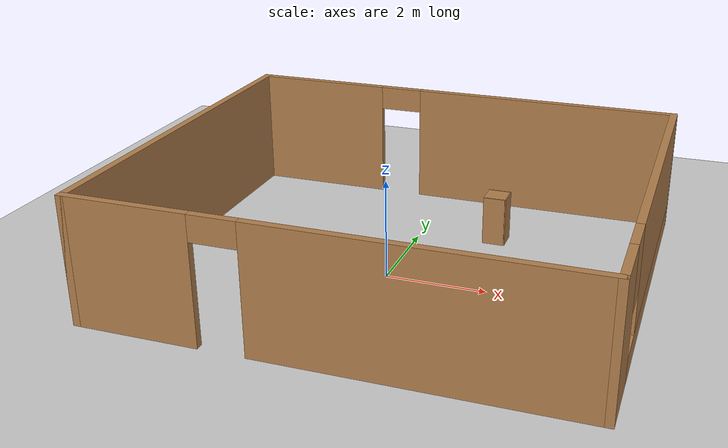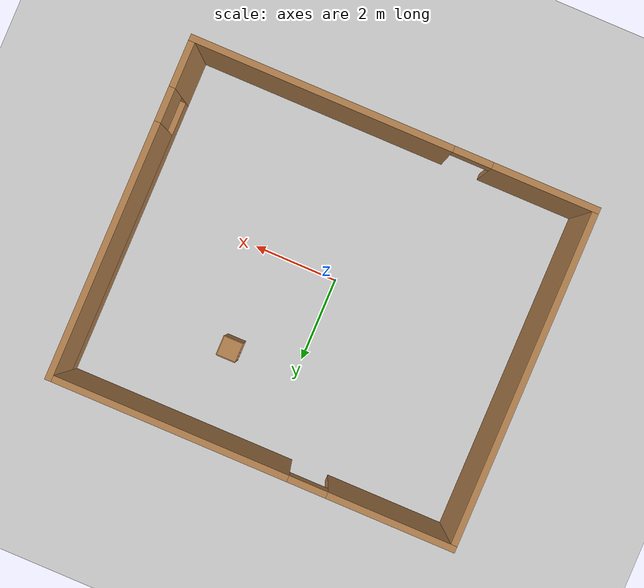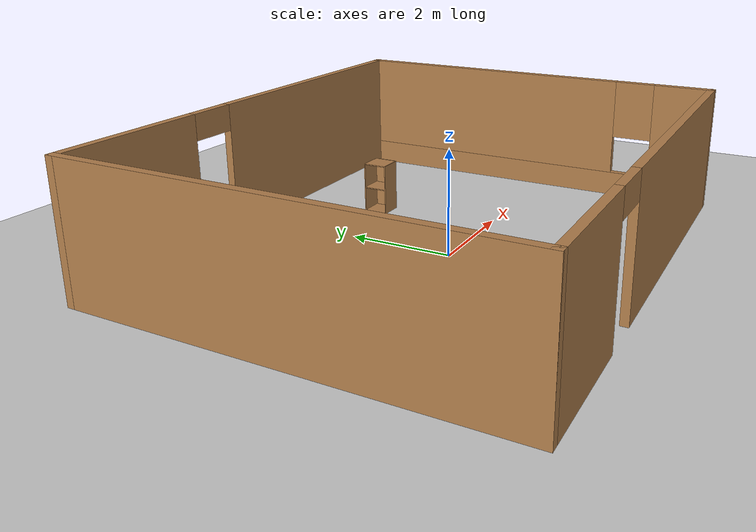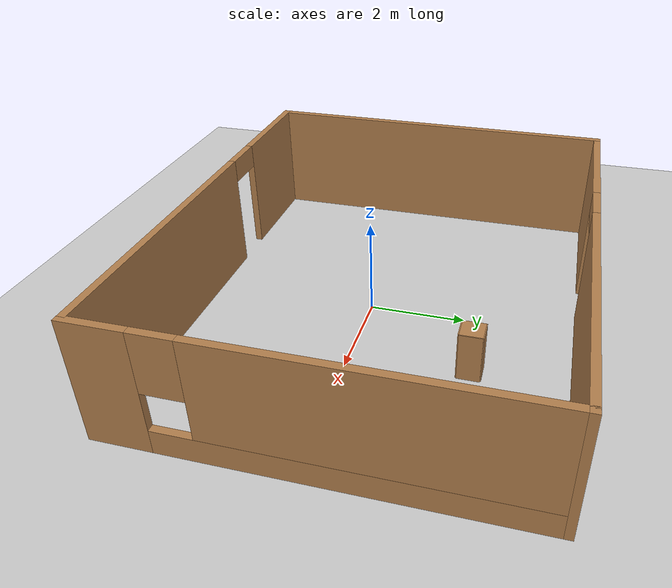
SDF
<sdf version="1.7">
 <world name="default">
  <light name="sun" type="directional">
   <pose>0 0 10 0 -0 0</pose>
   <diffuse>0.8 0.8 0.8 1</diffuse>
   <specular>0.2 0.2 0.2 1</specular>
   <attenuation>
    <range>1000</range>
    <constant>0.9</constant>
    <linear>0.01</linear>
    <quadratic>0.001</quadratic>
   </attenuation>
   <direction>-0.5 0.1 -0.9</direction>
   <spot><inner_angle>0</inner_angle><outer_angle>0</outer_angle><falloff>0</falloff></spot>
  </light>
  <model name="ground_plane">
   <static>1</static>
   <link name="link">
    <collision name="collision">
     <geometry><plane><normal>0 0 1</normal><size>100 100</size></plane></geometry>
     <surface>
      <contact><collide_bitmask>65535</collide_bitmask></contact>
      <friction><ode><mu>100</mu><mu2>50</mu2></ode></friction>
     </surface>
    </collision>
    <visual name="visual">
     <cast_shadows>0</cast_shadows>
     <geometry><plane><normal>0 0 1</normal><size>100 100</size></plane></geometry>
     <material>
      <script><uri>file://media/materials/scripts/gazebo.material</uri><name>Gazebo/Grey</name></script>
     </material>
    </visual>
   </link>
  </model>
  <gravity>0 0 -9.8</gravity>
  <magnetic_field>6e-06 2.3e-05 -4.2e-05</magnetic_field>
  <atmosphere type="adiabatic"/>
  <physics type="ode">
   <max_step_size>0.001</max_step_size>
   <real_time_factor>1</real_time_factor>
   <real_time_update_rate>1000</real_time_update_rate>
  </physics>
  <scene><ambient>0.4 0.4 0.4 1</ambient><background>0.7 0.7 0.7 1</background><shadows>1</shadows></scene>
  <audio><device>default</device></audio>
  <spherical_coordinates>
   <surface_model>EARTH_WGS84</surface_model>
   <latitude_deg>0</latitude_deg>
   <longitude_deg>0</longitude_deg>
   <elevation>0</elevation>
   <heading_deg>0</heading_deg>
  </spherical_coordinates>
  <model name="cabinet">
   <static>1</static>
   <link name="cabinet_bottom_plate">
    <inertial>
     <pose>0 0 -1 0 -0 0</pose>
     <inertia><ixx>2.05</ixx><ixy>0</ixy><ixz>0</ixz><iyy>2.05</iyy><iyz>0</iyz><izz>2.05</izz></inertia>
     <mass>25</mass>
    </inertial>
    <collision name="cabinet_bottom_plate_geom">
     <pose>0 0 0.01 0 -0 0</pose>
     <geometry><box><size>0.45 0.45 0.02</size></box></geometry>
    </collision>
    <visual name="cabinet_bottom_plate_geom_visual">
     <pose>0 0 0.01 0 -0 0</pose>
     <geometry><box><size>0.45 0.45 0.02</size></box></geometry>
     <material>
      <script><uri>file://media/materials/scripts/gazebo.material</uri><name>Gazebo/Wood</name></script>
     </material>
    </visual>
    <collision name="cabinet_bottom_plate_geom_cabinet_back_plate">
     <pose>0.235 0 0.51 0 -0 0</pose>
     <geometry><box><size>0.02 0.45 1.02</size></box></geometry>
    </collision>
    <visual name="cabinet_bottom_plate_geom_cabinet_back_plate_visual">
     <pose>0.235 0 0.51 0 -0 0</pose>
     <geometry><box><size>0.02 0.45 1.02</size></box></geometry>
     <material>
      <script><uri>file://media/materials/scripts/gazebo.material</uri><name>Gazebo/Wood</name></script>
     </material>
    </visual>
    <collision name="cabinet_bottom_plate_geom_cabinet_left_plate">
     <pose>0 0.235 0.51 0 -0 0</pose>
     <geometry><box><size>0.45 0.02 1.02</size></box></geometry>
    </collision>
    <visual name="cabinet_bottom_plate_geom_cabinet_left_plate_visual">
     <pose>0 0.235 0.51 0 -0 0</pose>
     <geometry><box><size>0.45 0.02 1.02</size></box></geometry>
     <material>
      <script><uri>file://media/materials/scripts/gazebo.material</uri><name>Gazebo/Wood</name></script>
     </material>
    </visual>
    <collision name="cabinet_bottom_plate_geom_cabinet_middle_plate">
     <pose>0 0 0.51 0 -0 0</pose>
     <geometry><box><size>0.45 0.45 0.02</size></box></geometry>
    </collision>
    <visual name="cabinet_bottom_plate_geom_cabinet_middle_plate_visual">
     <pose>0 0 0.51 0 -0 0</pose>
     <geometry><box><size>0.45 0.45 0.02</size></box></geometry>
     <material>
      <script><uri>file://media/materials/scripts/gazebo.material</uri><name>Gazebo/Wood</name></script>
     </material>
    </visual>
    <collision name="cabinet_bottom_plate_geom_cabinet_right_plate">
     <pose>0 -0.235 0.51 0 -0 0</pose>
     <geometry><box><size>0.45 0.02 1.02</size></box></geometry>
    </collision>
    <visual name="cabinet_bottom_plate_geom_cabinet_right_plate_visual">
     <pose>0 -0.235 0.51 0 -0 0</pose>
     <geometry><box><size>0.45 0.02 1.02</size></box></geometry>
     <material>
      <script><uri>file://media/materials/scripts/gazebo.material</uri><name>Gazebo/Wood</name></script>
     </material>
    </visual>
    <collision name="cabinet_bottom_plate_geom_cabinet_top_plate">
     <pose>0 0 1.01 0 -0 0</pose>
     <geometry><box><size>0.45 0.45 0.02</size></box></geometry>
    </collision>
    <visual name="cabinet_bottom_plate_geom_cabinet_top_plate_visual">
     <pose>0 0 1.01 0 -0 0</pose>
     <geometry><box><size>0.45 0.45 0.02</size></box></geometry>
     <material>
      <script><uri>file://media/materials/scripts/gazebo.material</uri><name>Gazebo/Wood</name></script>
     </material>
    </visual>
   </link>
   <pose>1.58461 2.36536 0 0 -0 0</pose>
  </model>
  <model name="test1">
   <pose>0.145 0.395 0 0 -0 0</pose>
   <link name="Wall_2">
    <pose>0 -3.925 0 0 -0 0</pose>
    <visual name="Wall_2_Visual_0">
     <pose>-3.50852 0 1.25 0 -0 0</pose>
     <geometry><box><size>2.48295 0.15 2.5</size></box></geometry>
     <material>
      <script><uri>file://media/materials/scripts/gazebo.material</uri><name>Gazebo/Wood</name></script>
      <ambient>1 1 1 1</ambient>
     </material>
     <meta><layer>0</layer></meta>
    </visual>
    <collision name="Wall_2_Collision_0">
     <geometry><box><size>2.48295 0.15 2.5</size></box></geometry>
     <pose>-3.50852 0 1.25 0 -0 0</pose>
    </collision>
    <visual name="Wall_2_Visual_1">
     <pose>1.69148 0 1.25 0 -0 0</pose>
     <geometry><box><size>6.11705 0.15 2.5</size></box></geometry>
     <material>
      <script><uri>file://media/materials/scripts/gazebo.material</uri><name>Gazebo/Wood</name></script>
      <ambient>1 1 1 1</ambient>
     </material>
     <meta><layer>0</layer></meta>
    </visual>
    <collision name="Wall_2_Collision_1">
     <geometry><box><size>6.11705 0.15 2.5</size></box></geometry>
     <pose>1.69148 0 1.25 0 -0 0</pose>
    </collision>
    <visual name="Wall_2_Visual_2">
     <pose>-1.81705 0 2.25 0 -0 0</pose>
     <geometry><box><size>0.9 0.15 0.5</size></box></geometry>
     <material>
      <script><uri>file://media/materials/scripts/gazebo.material</uri><name>Gazebo/Wood</name></script>
      <ambient>1 1 1 1</ambient>
     </material>
     <meta><layer>0</layer></meta>
    </visual>
    <collision name="Wall_2_Collision_2">
     <geometry><box><size>0.9 0.15 0.5</size></box></geometry>
     <pose>-1.81705 0 2.25 0 -0 0</pose>
    </collision>
   </link>
   <link name="Wall_3">
    <pose>4.675 0 0 0 -0 1.5708</pose>
    <visual name="Wall_3_Visual_0">
     <pose>-3.39438 0 1.25 0 -0 0</pose>
     <geometry><box><size>1.21125 0.15 2.5</size></box></geometry>
     <material>
      <script><uri>file://media/materials/scripts/gazebo.material</uri><name>Gazebo/Wood</name></script>
      <ambient>1 1 1 1</ambient>
     </material>
     <meta><layer>0</layer></meta>
    </visual>
    <collision name="Wall_3_Collision_0">
     <geometry><box><size>1.21125 0.15 2.5</size></box></geometry>
     <pose>-3.39438 0 1.25 0 -0 0</pose>
    </collision>
    <visual name="Wall_3_Visual_1">
     <pose>0.605624 0 0.25 0 -0 0</pose>
     <geometry><box><size>6.78875 0.15 0.5</size></box></geometry>
     <material>
      <script><uri>file://media/materials/scripts/gazebo.material</uri><name>Gazebo/Wood</name></script>
      <ambient>1 1 1 1</ambient>
     </material>
     <meta><layer>0</layer></meta>
    </visual>
    <collision name="Wall_3_Collision_1">
     <geometry><box><size>6.78875 0.15 0.5</size></box></geometry>
     <pose>0.605624 0 0.25 0 -0 0</pose>
    </collision>
    <visual name="Wall_3_Visual_2">
     <pose>1.00562 0 1.5 0 -0 0</pose>
     <geometry><box><size>5.98875 0.15 2</size></box></geometry>
     <material>
      <script><uri>file://media/materials/scripts/gazebo.material</uri><name>Gazebo/Wood</name></script>
      <ambient>1 1 1 1</ambient>
     </material>
     <meta><layer>0</layer></meta>
    </visual>
    <collision name="Wall_3_Collision_2">
     <geometry><box><size>5.98875 0.15 2</size></box></geometry>
     <pose>1.00562 0 1.5 0 -0 0</pose>
    </collision>
    <visual name="Wall_3_Visual_3">
     <pose>-2.38875 0 1.9 0 -0 0</pose>
     <geometry><box><size>0.8 0.15 1.2</size></box></geometry>
     <material>
      <script><uri>file://media/materials/scripts/gazebo.material</uri><name>Gazebo/Wood</name></script>
      <ambient>1 1 1 1</ambient>
     </material>
     <meta><layer>0</layer></meta>
    </visual>
    <collision name="Wall_3_Collision_3">
     <geometry><box><size>0.8 0.15 1.2</size></box></geometry>
     <pose>-2.38875 0 1.9 0 -0 0</pose>
    </collision>
   </link>
   <link name="Wall_5">
    <pose>0 3.925 0 0 -0 3.14159</pose>
    <visual name="Wall_5_Visual_0">
     <pose>-1.94591 0 1.25 0 -0 0</pose>
     <geometry><box><size>5.60817 0.15 2.5</size></box></geometry>
     <material>
      <script><uri>file://media/materials/scripts/gazebo.material</uri><name>Gazebo/Wood</name></script>
      <ambient>1 1 1 1</ambient>
     </material>
     <meta><layer>0</layer></meta>
    </visual>
    <collision name="Wall_5_Collision_0">
     <geometry><box><size>5.60817 0.15 2.5</size></box></geometry>
     <pose>-1.94591 0 1.25 0 -0 0</pose>
    </collision>
    <visual name="Wall_5_Visual_1">
     <pose>3.25409 0 1.25 0 -0 0</pose>
     <geometry><box><size>2.99183 0.15 2.5</size></box></geometry>
     <material>
      <script><uri>file://media/materials/scripts/gazebo.material</uri><name>Gazebo/Wood</name></script>
      <ambient>1 1 1 1</ambient>
     </material>
     <meta><layer>0</layer></meta>
    </visual>
    <collision name="Wall_5_Collision_1">
     <geometry><box><size>2.99183 0.15 2.5</size></box></geometry>
     <pose>3.25409 0 1.25 0 -0 0</pose>
    </collision>
    <visual name="Wall_5_Visual_2">
     <pose>1.30817 0 2.25 0 -0 0</pose>
     <geometry><box><size>0.9 0.15 0.5</size></box></geometry>
     <material>
      <script><uri>file://media/materials/scripts/gazebo.material</uri><name>Gazebo/Wood</name></script>
      <ambient>1 1 1 1</ambient>
     </material>
     <meta><layer>0</layer></meta>
    </visual>
    <collision name="Wall_5_Collision_2">
     <geometry><box><size>0.9 0.15 0.5</size></box></geometry>
     <pose>1.30817 0 2.25 0 -0 0</pose>
    </collision>
   </link>
   <link name="Wall_6">
    <collision name="Wall_6_Collision">
     <geometry><box><size>8 0.15 2.5</size></box></geometry>
     <pose>0 0 1.25 0 -0 0</pose>
    </collision>
    <visual name="Wall_6_Visual">
     <pose>0 0 1.25 0 -0 0</pose>
     <geometry><box><size>8 0.15 2.5</size></box></geometry>
     <material>
      <script><uri>file://media/materials/scripts/gazebo.material</uri><name>Gazebo/Wood</name></script>
      <ambient>1 1 1 1</ambient>
     </material>
     <meta><layer>0</layer></meta>
    </visual>
    <pose>-4.675 0 0 0 -0 -1.5708</pose>
   </link>
   <static>1</static>
  </model>
 </world>
</sdf>
